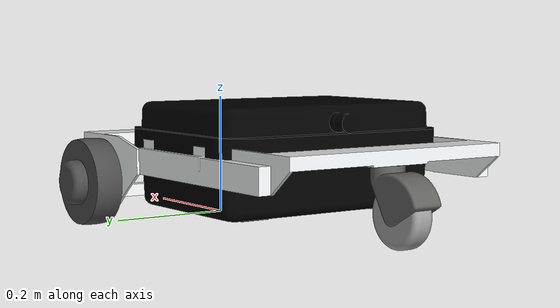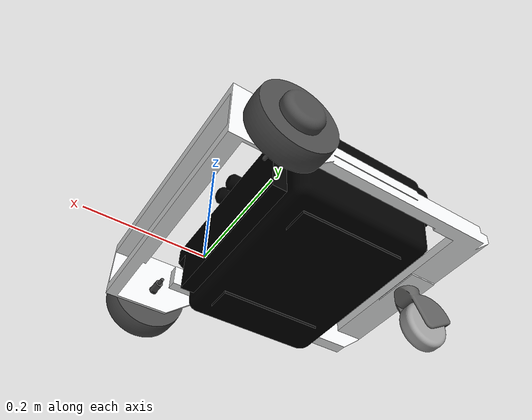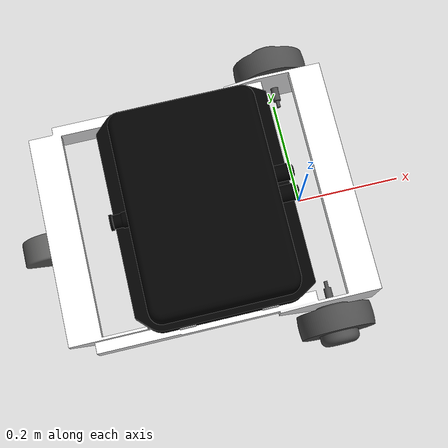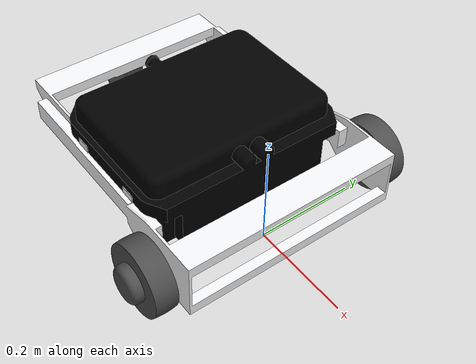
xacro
<?xml version='1.0' encoding='utf-8'?>
<robot xmlns:xacro="http://www.ros.org/wiki/xacro" name="mega3_outdoor">
  <xacro:arg name="use_ros2_control" default="true" />
  <xacro:include filename="$(find megarover_description)/urdf/materials.xacro" />
  <xacro:if value="$(arg use_ros2_control)">
    <xacro:include filename="$(find megarover_description)/urdf/mega3_ros2_control.xacro" />
    <gazebo>
      <plugin name="gz_ros2_control::GazeboSimROS2ControlPlugin" filename="gz_ros2_control-system">
        <parameters>$(find megarover_description)/params/controllers.yaml</parameters>
      </plugin>
      <plugin name="gz::sim::systems::OdometryPublisher" filename="gz-sim-odometry-publisher-system">
        <odom_frame>odom</odom_frame>
        <robot_base_frame>base_footprint</robot_base_frame>
        <odom_topic>/sim_odom</odom_topic>
        <odom_publish_frequency>50</odom_publish_frequency>
        <dimensions>2</dimensions>
      </plugin>
    </gazebo>
  </xacro:if>
  <gazebo reference="base_link">
    <mu1>0.05</mu1>
    <mu2>0.05</mu2>
  </gazebo>
  <gazebo reference="right_wheel_1">
    <mu1>1.5</mu1>
    <mu2>0.8</mu2>
  </gazebo>
  <gazebo reference="left_wheel_1">
    <mu1>1.5</mu1>
    <mu2>0.8</mu2>
  </gazebo>
  <material name="material_8300a_Battery">
    <color rgba="0.623529 0.623529 0.623529 1.000000" />
  </material>
  <material name="material_CASE">
    <color rgba="0.000000 0.000000 0.000000 1.000000" />
  </material>
  <material name="material_Caster_Frame">
    <color rgba="0.376471 0.376471 0.372549 1.000000" />
  </material>
  <material name="material_Caster_Wheel">
    <color rgba="0.623529 0.623529 0.623529 1.000000" />
  </material>
  <material name="material_base_link">
    <color rgba="0.956863 0.960784 0.964706 1.000000" />
  </material>
  <!--CAD base_link faces +X; base_footprint is below the drive axle.-->
  <link name="base_footprint" />
  <joint name="base_joint" type="fixed">
    <origin xyz="-0.19 0 0" rpy="0 0 0" />
    <parent link="base_footprint" />
    <child link="base_link" />
  </joint>
  <link name="base_link">
    <inertial>
      <origin xyz="0.021533200260098476 -2.6730947262285993e-07 0.11265180991700938" rpy="0 0 0" />
      <mass value="5.544575452642739" />
      <inertia ixx="0.15088233661059702" iyy="0.25254616879183" izz="0.3940770957822911" ixy="-3.1914733765819894e-08" iyz="-7.714531536724789e-09" ixz="0.010434033972929536" />
    </inertial>
    <visual>
      <origin xyz="0.0 0.0 0.0" rpy="0 0 0" />
      <geometry>
        <mesh filename="package://megarover_description/meshes/mega3_outdoor/base_link.stl" scale="0.001 0.001 0.001" />
      </geometry>
      <material name="material_base_link" />
    </visual>
    <collision>
      <origin xyz="0.0 0.0 0.0" rpy="0 0 0" />
      <geometry>
        <mesh filename="package://megarover_description/meshes/mega3_outdoor/base_link.stl" scale="0.001 0.001 0.001" />
      </geometry>
    </collision>
  </link>
  <link name="left_wheel_1">
    <inertial>
      <origin rpy="0 0 0" xyz="0 0 0" />
      <mass value="1.24" />
      <inertia ixx="1.655435e-03" ixy="0.0" ixz="0.0" iyy="2.678186e-03" iyz="0.0" izz="1.655435e-03" />
    </inertial>
    <visual>
      <origin rpy="0 0 0" xyz="-0.19 -0.18815 -0.069" />
      <geometry>
        <mesh filename="package://megarover_description/meshes/mega3_outdoor/left_wheel.stl" scale="0.001 0.001 0.001" />
      </geometry>
      <material name="dark_grey" />
    </visual>
    <collision>
      <origin rpy="0 0 0" xyz="-0.19 -0.18815 -0.069" />
      <geometry>
        <mesh filename="package://megarover_description/meshes/mega3_outdoor/left_wheel.stl" scale="0.001 0.001 0.001" />
      </geometry>
    </collision>
  </link>
  <link name="right_wheel_1">
    <inertial>
      <origin rpy="0 0 0" xyz="0 0 0" />
      <mass value="1.24" />
      <inertia ixx="1.655421e-03" ixy="0.0" ixz="0.0" iyy="2.678055e-03" iyz="0.0" izz="1.655420e-03" />
    </inertial>
    <visual>
      <origin rpy="0 0 0" xyz="-0.19 0.18815 -0.069" />
      <geometry>
        <mesh filename="package://megarover_description/meshes/mega3_outdoor/right_wheel.stl" scale="0.001 0.001 0.001" />
      </geometry>
      <material name="dark_grey" />
    </visual>
    <collision>
      <origin rpy="0 0 0" xyz="-0.19 0.18815 -0.069" />
      <geometry>
        <mesh filename="package://megarover_description/meshes/mega3_outdoor/right_wheel.stl" scale="0.001 0.001 0.001" />
      </geometry>
    </collision>
  </link>
  <link name="CASE">
    <inertial>
      <origin xyz="0.007376818370198324 -0.00012805018001641326 0.10606753003762784" rpy="0 0 0" />
      <mass value="5.991331703230223" />
      <inertia ixx="0.09857375516052522" iyy="0.09651485170005958" izz="0.16144407148773096" ixy="-5.281695436961109e-05" iyz="-4.6465562975365466e-05" ixz="0.0022533131824167513" />
    </inertial>
    <visual>
      <origin xyz="0.0 0.0 0.0" rpy="0 0 0" />
      <geometry>
        <mesh filename="package://megarover_description/meshes/mega3_outdoor/CASE.stl" scale="0.001 0.001 0.001" />
      </geometry>
      <material name="material_CASE" />
    </visual>
    <collision>
      <origin xyz="0.0 0.0 0.0" rpy="0 0 0" />
      <geometry>
        <mesh filename="package://megarover_description/meshes/mega3_outdoor/CASE.stl" scale="0.001 0.001 0.001" />
      </geometry>
    </collision>
  </link>
  <link name="Caster_Frame">
    <inertial>
      <origin xyz="-0.03035756286608754 -8.865791635276123e-10 -0.028121885999395427" rpy="0 0 0" />
      <mass value="0.1310617208811754" />
      <inertia ixx="8.918525674833405e-05" iyy="0.00016170864079072082" izz="0.00015020780020126405" ixy="3.405363186845285e-13" iyz="-4.2444613293619276e-12" ixz="-3.769052149692198e-05" />
    </inertial>
    <visual>
      <origin xyz="0.255 0.0 -0.119" rpy="0 0 0" />
      <geometry>
        <mesh filename="package://megarover_description/meshes/mega3_outdoor/Caster_Frame.stl" scale="0.001 0.001 0.001" />
      </geometry>
      <material name="material_Caster_Frame" />
    </visual>
    <collision>
      <origin xyz="0.255 0.0 -0.119" rpy="0 0 0" />
      <geometry>
        <mesh filename="package://megarover_description/meshes/mega3_outdoor/Caster_Frame.stl" scale="0.001 0.001 0.001" />
      </geometry>
    </collision>
  </link>
  <link name="Caster_Wheel">
    <inertial>
      <origin xyz="5.551115123125783e-16 -0.01749999999999955 2.0816681711721685e-17" rpy="0 0 0" />
      <mass value="2.0567619932840304" />
      <inertia ixx="0.001429281486571717" iyy="0.0024655831199319467" izz="0.001429281486571704" ixy="9.995346772490005e-19" iyz="-3.5697667044584973e-19" ixz="-6.938893903907228e-18" />
    </inertial>
    <visual>
      <origin xyz="0.287 -0.0175 -0.05" rpy="0 0 0" />
      <geometry>
        <mesh filename="package://megarover_description/meshes/mega3_outdoor/Caster_Wheel.stl" scale="0.001 0.001 0.001" />
      </geometry>
      <material name="material_Caster_Wheel" />
    </visual>
    <collision>
      <origin xyz="0.287 -0.0175 -0.05" rpy="0 0 0" />
      <geometry>
        <mesh filename="package://megarover_description/meshes/mega3_outdoor/Caster_Wheel.stl" scale="0.001 0.001 0.001" />
      </geometry>
    </collision>
  </link>
  <link name="Battery">
    <inertial>
      <origin xyz="0.038310700518913596 -0.0001914069884846533 0.1031516129185513" rpy="0 0 0" />
      <mass value="14.36626600000001" />
      <inertia ixx="0.16583400764655448" iyy="0.051001162861592814" izz="0.1795603149580309" ixy="3.432423249248763e-07" iyz="0.0006428118307779435" ixz="6.864846498576271e-05" />
    </inertial>
    <visual>
      <origin xyz="0.0 0.0 0.0" rpy="0 0 0" />
      <geometry>
        <mesh filename="package://megarover_description/meshes/mega3_outdoor/Battery.stl" scale="0.001 0.001 0.001" />
      </geometry>
      <material name="material_8300a_Battery" />
    </visual>
    <collision>
      <origin xyz="0.0 0.0 0.0" rpy="0 0 0" />
      <geometry>
        <mesh filename="package://megarover_description/meshes/mega3_outdoor/Battery.stl" scale="0.001 0.001 0.001" />
      </geometry>
    </collision>
  </link>
  <joint name="left_wheel_joint" type="continuous">
    <origin xyz="0.19 0.18815 0.069" rpy="0.0 0.0 0.0" />
    <parent link="base_link" />
    <child link="left_wheel_1" />
    <axis xyz="0.0 1.0 0.0" />
  </joint>
  <joint name="right_wheel_joint" type="continuous">
    <origin xyz="0.19 -0.18815 0.069" rpy="0.0 0.0 0.0" />
    <parent link="base_link" />
    <child link="right_wheel_1" />
    <axis xyz="0.0 1.0 0.0" />
  </joint>
  <joint name="case_joint" type="fixed">
    <origin xyz="0.0 0.0 0.0" rpy="0.0 0.0 0.0" />
    <parent link="base_link" />
    <child link="CASE" />
  </joint>
  <joint name="caster_swivel_joint" type="continuous">
    <origin xyz="-0.255 0.0 0.119" rpy="0.0 0.0 0.0" />
    <parent link="base_link" />
    <child link="Caster_Frame" />
    <axis xyz="-0.0 -0.0 -1.0" />
    <limit effort="100.0" velocity="100.0" />
  </joint>
  <joint name="caster_wheel_joint" type="continuous">
    <origin xyz="-0.032 0.0175 -0.069" rpy="0.0 0.0 0.0" />
    <parent link="Caster_Frame" />
    <child link="Caster_Wheel" />
    <axis xyz="-0.0 -1.0 0.0" />
    <limit effort="100.0" velocity="100.0" />
  </joint>
  <joint name="battery_joint" type="fixed">
    <origin xyz="0.0 0.0 0.0" rpy="0.0 0.0 0.0" />
    <parent link="CASE" />
    <child link="Battery" />
  </joint>
</robot>
